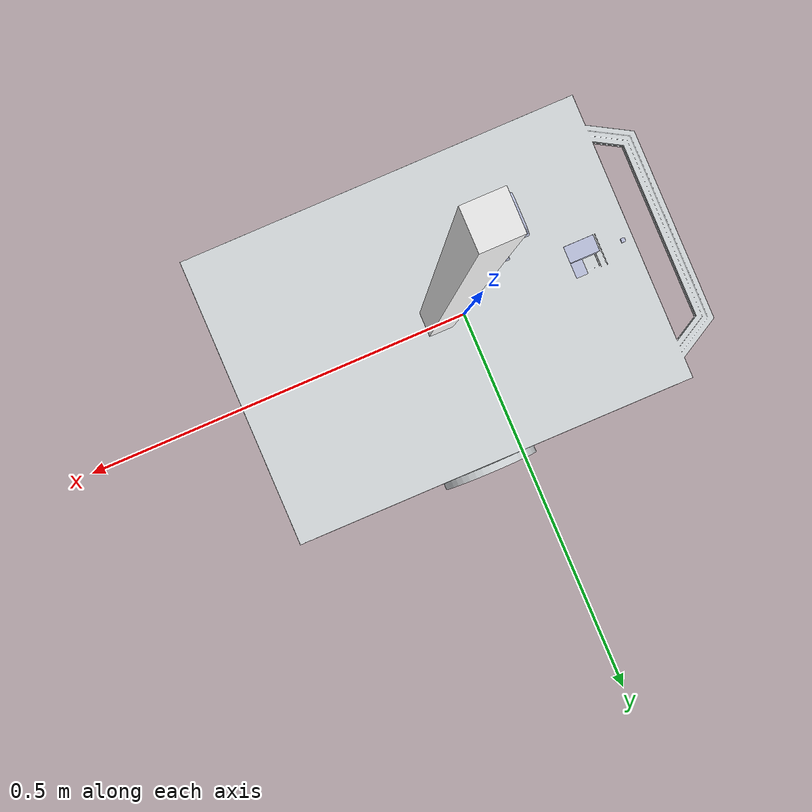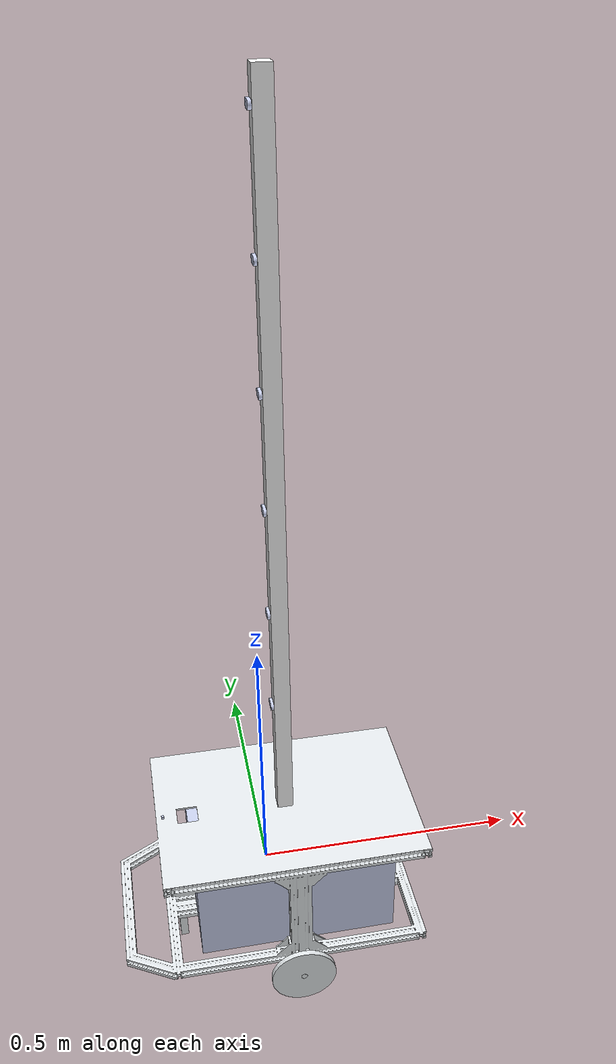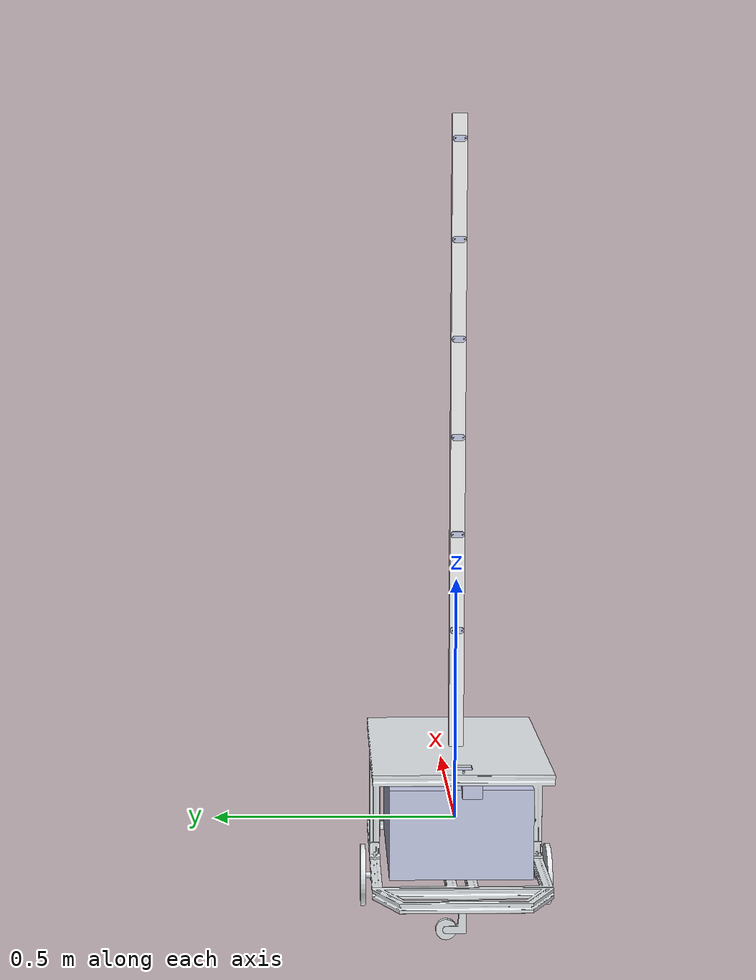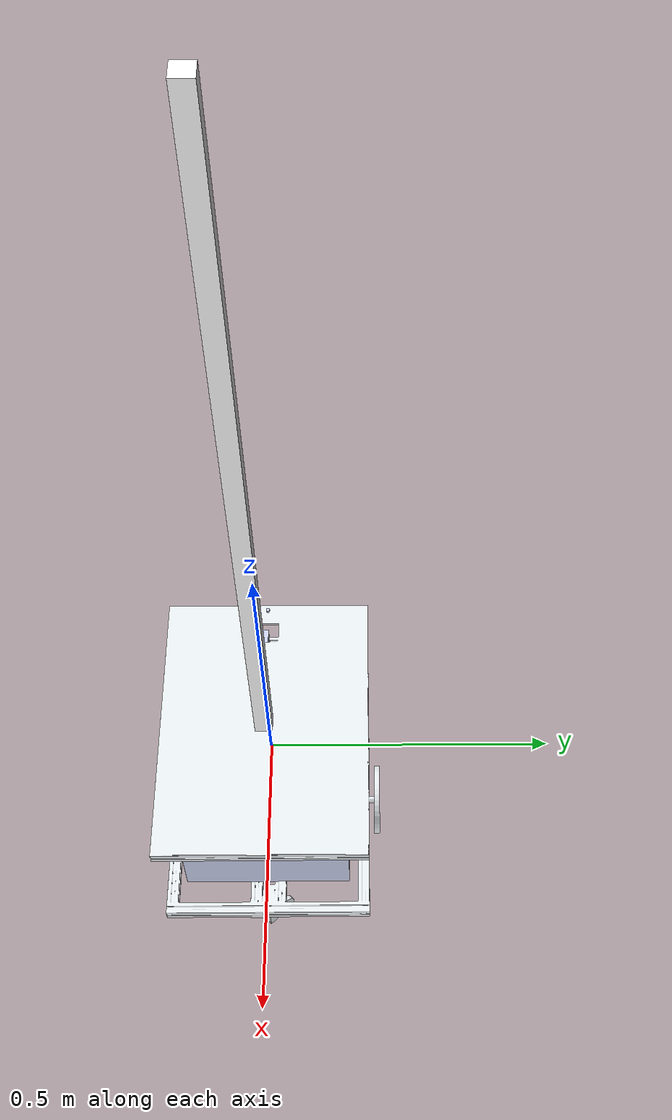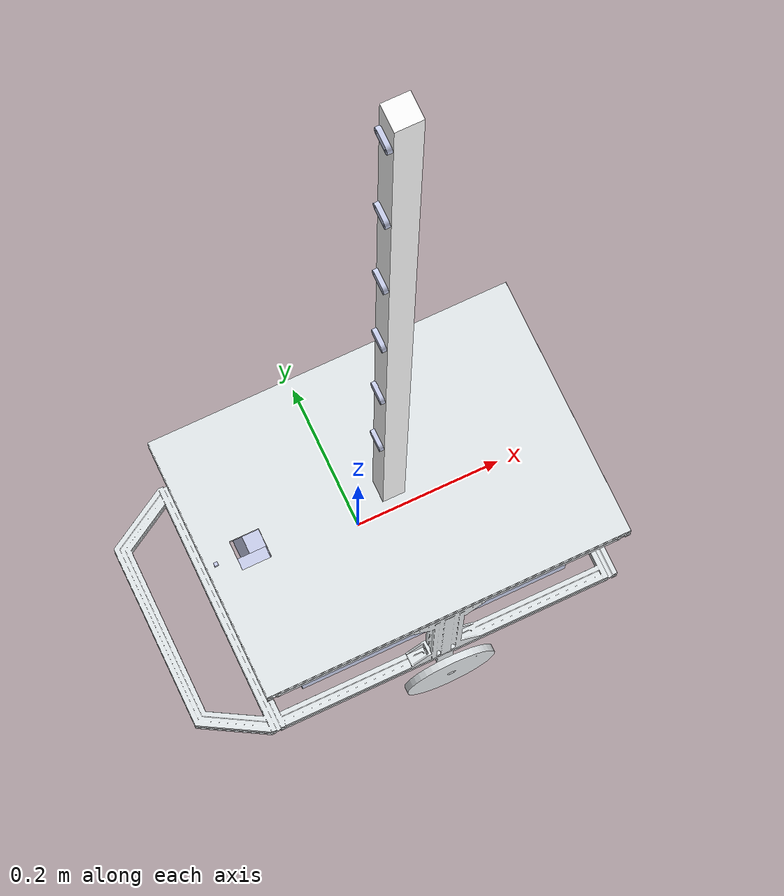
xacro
<?xml version="1.0" encoding="utf-8"?>
<robot  name="GazeboV0" xmlns:xacro="http://www.ros.org/wiki/xacro">
  <xacro:include filename="$(find GazeboV0)/urdf/GazeboV0_gazebo_plugins.xacro"/>
  <link
    name="Chassis">
    <inertial>
      <origin
        xyz="0.0269095443731569 0.0453323740979076 0.00338251947577584"
        rpy="0 0 0" />
      <mass
        value="4.71173330321545" />
      <inertia
        ixx="0.131230257498409"
        ixy="-0.00965992784236992"
        ixz="-5.99613989356189E-08"
        iyy="0.195410162986863"
        iyz="6.45264756717054E-06"
        izz="0.183471725736634" />
    </inertial>
    <visual>
      <origin
        xyz="0 0 0"
        rpy="0 0 0" />
      <geometry>
        <mesh
          filename="package://GazeboV0/meshes/Chassis.STL" />
      </geometry>
      <material
        name="">
        <color
          rgba="0.898039215686275 0.917647058823529 0.929411764705882 1" />
      </material>
    </visual>
    <collision>
      <origin
        xyz="0 0 0"
        rpy="0 0 0" />
      <geometry>
        <mesh
          filename="package://GazeboV0/meshes/Chassis.STL" />
      </geometry>
    </collision>
  </link>
  <link
    name="RightWheel">
    <inertial>
      <origin
        xyz="-4.16333634234434E-17 0 0.00510000000000468"
        rpy="0 0 0" />
      <mass
        value="0.338614058747035" />
      <inertia
        ixx="0.000347581051317554"
        ixy="-1.01643953670217E-20"
        ixz="-2.39239615850713E-18"
        iyy="0.000347581051317554"
        iyz="4.29776253994726E-19"
        izz="0.000689518301963574" />
    </inertial>
    <visual>
      <origin
        xyz="0 0 0"
        rpy="0 0 0" />
      <geometry>
        <mesh
          filename="package://GazeboV0/meshes/RightWheel.STL" />
      </geometry>
      <material
        name="">
        <color
          rgba="0.898039215686275 0.917647058823529 0.929411764705882 1" />
      </material>
    </visual>
    <collision>
      <origin
        xyz="0 0 0"
        rpy="0 0 0" />
      <geometry>
        <mesh
          filename="package://GazeboV0/meshes/RightWheel.STL" />
      </geometry>
    </collision>
  </link>
  <joint
    name="RightRevolute"
    type="continuous">
    <origin
      xyz="0.040115 0.18594 -0.13626"
      rpy="-1.5708 0.15664 0" />
    <parent
      link="Chassis" />
    <child
      link="RightWheel" />
    <axis
      xyz="0 0 1" />
    <dynamics
      damping="0.01"
      friction="0.01" />
  </joint>
  <link
    name="LeftWheel">
    <inertial>
      <origin
        xyz="9.75608482889356E-15 -3.19189119579733E-16 -0.384296129215001"
        rpy="0 0 0" />
      <mass
        value="0.338614058747035" />
      <inertia
        ixx="0.000347581051317554"
        ixy="3.65109595413485E-32"
        ixz="-8.76963966855234E-18"
        iyy="0.000347581051317554"
        iyz="3.26098816688528E-19"
        izz="0.000689518301963574" />
    </inertial>
    <visual>
      <origin
        xyz="0 0 0"
        rpy="0 0 0" />
      <geometry>
        <mesh
          filename="package://GazeboV0/meshes/LeftWheel.STL" />
      </geometry>
      <material
        name="">
        <color
          rgba="0.898039215686275 0.917647058823529 0.929411764705882 1" />
      </material>
    </visual>
    <collision>
      <origin
        xyz="0 0 0"
        rpy="0 0 0" />
      <geometry>
        <mesh
          filename="package://GazeboV0/meshes/LeftWheel.STL" />
      </geometry>
    </collision>
  </link>
  <joint
    name="LeftRevolute"
    type="continuous">
    <origin
      xyz="0.040115 0.18594 -0.13626"
      rpy="-1.5708 -0.8089 0" />
    <parent
      link="Chassis" />
    <child
      link="LeftWheel" />
    <axis
      xyz="0 0 1" />
    <dynamics
      damping="0.01"
      friction="0.01" />
  </joint>
  <link
    name="FrontCastor">
    <inertial>
      <origin
        xyz="0.0030314489318095 0.0345627416364458 -2.33146835171283E-15"
        rpy="0 0 0" />
      <mass
        value="0.0671525104446695" />
      <inertia
        ixx="4.49259698602968E-05"
        ixy="-6.70501812216222E-06"
        ixz="6.59626907674286E-20"
        iyy="9.61913985679315E-06"
        iyz="3.5488033511995E-19"
        izz="4.97992078191438E-05" />
    </inertial>
    <visual>
      <origin
        xyz="0 0 0"
        rpy="0 0 0" />
      <geometry>
        <mesh
          filename="package://GazeboV0/meshes/FrontCastor.STL" />
      </geometry>
      <material
        name="">
        <color
          rgba="0.898039215686275 0.917647058823529 0.929411764705882 1" />
      </material>
    </visual>
    <collision>
      <origin
        xyz="0 0 0"
        rpy="0 0 0" />
      <geometry>
        <mesh
          filename="package://GazeboV0/meshes/FrontCastor.STL" />
      </geometry>
    </collision>
  </link>
  <joint
    name="FrontCastorRevolute"
    type="continuous">
    <origin
      xyz="-0.17901 -0.0033514 -0.11126"
      rpy="-1.5708 0 1.5956" />
    <parent
      link="Chassis" />
    <child
      link="FrontCastor" />
    <axis
      xyz="0 1 0" />
    <dynamics
      damping="0.01"
      friction="0.01" />
  </joint>
  <link
    name="FrontCastorWheel">
    <inertial>
      <origin
        xyz="0 -1.38777878078145E-17 -2.692290834716E-15"
        rpy="0 0 0" />
      <mass
        value="0.0317645176567402" />
      <inertia
        ixx="3.91504603938205E-06"
        ixy="7.41153828847513E-22"
        ixz="2.11096492323533E-21"
        iyy="3.91504603938204E-06"
        iyz="-3.64621214013375E-21"
        izz="7.40108172021949E-06" />
    </inertial>
    <visual>
      <origin
        xyz="0 0 0"
        rpy="0 0 0" />
      <geometry>
        <mesh
          filename="package://GazeboV0/meshes/FrontCastorWheel.STL" />
      </geometry>
      <material
        name="">
        <color
          rgba="0.898039215686275 0.917647058823529 0.929411764705882 1" />
      </material>
    </visual>
    <collision>
      <origin
        xyz="0 0 0"
        rpy="0 0 0" />
      <geometry>
        <mesh
          filename="package://GazeboV0/meshes/FrontCastorWheel.STL" />
      </geometry>
    </collision>
  </link>
  <joint
    name="FrontCastorWheelRevolute"
    type="continuous">
    <origin
      xyz="0.032 0.0675 0"
      rpy="0 0 1.984" />
    <parent
      link="FrontCastor" />
    <child
      link="FrontCastorWheel" />
    <axis
      xyz="0 0 1" />
    <dynamics
      damping="0.01"
      friction="0.01" />
  </joint>
  <link
    name="RearCastor">
    <inertial>
      <origin
        xyz="0.00303144893180851 0.0345627416364456 -1.22124532708767E-14"
        rpy="0 0 0" />
      <mass
        value="0.0671525104446697" />
      <inertia
        ixx="4.49259698602973E-05"
        ixy="-6.70501812216102E-06"
        ixz="3.2695471764016E-19"
        iyy="9.61913985679271E-06"
        iyz="1.94821687675364E-18"
        izz="4.97992078191438E-05" />
    </inertial>
    <visual>
      <origin
        xyz="0 0 0"
        rpy="0 0 0" />
      <geometry>
        <mesh
          filename="package://GazeboV0/meshes/RearCastor.STL" />
      </geometry>
      <material
        name="">
        <color
          rgba="0.898039215686275 0.917647058823529 0.929411764705882 1" />
      </material>
    </visual>
    <collision>
      <origin
        xyz="0 0 0"
        rpy="0 0 0" />
      <geometry>
        <mesh
          filename="package://GazeboV0/meshes/RearCastor.STL" />
      </geometry>
    </collision>
  </link>
  <joint
    name="RearCastorRevolute"
    type="continuous">
    <origin
      xyz="0.25924 -0.0033514 -0.11126"
      rpy="-1.5708 0 2.3562" />
    <parent
      link="Chassis" />
    <child
      link="RearCastor" />
    <axis
      xyz="0 1 0" />
    <dynamics
      damping="0.01"
      friction="0.01" />
  </joint>
  <link
    name="RearCastorWheel">
    <inertial>
      <origin
        xyz="0 2.77555756156289E-17 -1.01862962509358E-14"
        rpy="0 0 0" />
      <mass
        value="0.0317645176567403" />
      <inertia
        ixx="3.91504603938205E-06"
        ixy="-5.82335151237331E-22"
        ixz="-1.79994501291539E-21"
        iyy="3.91504603938205E-06"
        iyz="1.05879118406788E-22"
        izz="7.4010817202195E-06" />
    </inertial>
    <visual>
      <origin
        xyz="0 0 0"
        rpy="0 0 0" />
      <geometry>
        <mesh
          filename="package://GazeboV0/meshes/RearCastorWheel.STL" />
      </geometry>
      <material
        name="">
        <color
          rgba="0.898039215686275 0.917647058823529 0.929411764705882 1" />
      </material>
    </visual>
    <collision>
      <origin
        xyz="0 0 0"
        rpy="0 0 0" />
      <geometry>
        <mesh
          filename="package://GazeboV0/meshes/RearCastorWheel.STL" />
      </geometry>
    </collision>
  </link>
  <joint
    name="RearCastorWheelRevolute"
    type="continuous">
    <origin
      xyz="0.032 0.0675 0"
      rpy="0 0 0.34434" />
    <parent
      link="RearCastor" />
    <child
      link="RearCastorWheel" />
    <axis
      xyz="0 0 1" />
    <dynamics
      damping="0.01"
      friction="0.01" />
  </joint>
  <link
    name="Battery">
    <inertial>
      <origin
        xyz="-2.77555756156289E-17 0.0925 2.82152773367628E-15"
        rpy="0 0 0" />
      <mass
        value="17.512433" />
      <inertia
        ixx="0.172679886227083"
        ixy="-7.17521943866141E-17"
        ixz="-9.46607853575198E-16"
        iyy="0.333465911708333"
        iyz="2.24903143829696E-15"
        izz="0.260679862052083" />
    </inertial>
    <visual>
      <origin
        xyz="0 0 0"
        rpy="0 0 0" />
      <geometry>
        <mesh
          filename="package://GazeboV0/meshes/Battery.STL" />
      </geometry>
      <material
        name="">
        <color
          rgba="0.792156862745098 0.819607843137255 0.933333333333333 1" />
      </material>
    </visual>
    <collision>
      <origin
        xyz="0 0 0"
        rpy="0 0 0" />
      <geometry>
        <mesh
          filename="package://GazeboV0/meshes/Battery.STL" />
      </geometry>
    </collision>
  </link>
  <joint
    name="Fixed_Chassis_Battery"
    type="fixed">
    <origin
      xyz="0.040115 -0.0036514 0.097745"
      rpy="-1.5708 0 3.1416" />
    <parent
      link="Chassis" />
    <child
      link="Battery" />
    <axis
      xyz="0 0 0" />
  </joint>
  <link
    name="LiDAR">
    <inertial>
      <origin
        xyz="-2.77555756156289E-17 0.02 5.63785129692462E-18"
        rpy="0 0 0" />
      <mass
        value="0.064" />
      <inertia
        ixx="1.70666666666667E-05"
        ixy="2.58629900392802E-22"
        ixz="8.21376807141E-22"
        iyy="1.70666666666667E-05"
        iyz="1.20423640868724E-22"
        izz="1.70666666666667E-05" />
    </inertial>
    <visual>
      <origin
        xyz="0 0 0"
        rpy="0 0 0" />
      <geometry>
        <mesh
          filename="package://GazeboV0/meshes/LiDAR.STL" />
      </geometry>
      <material
        name="">
        <color
          rgba="0.792156862745098 0.819607843137255 0.933333333333333 1" />
      </material>
    </visual>
    <collision>
      <origin
        xyz="0 0 0"
        rpy="0 0 0" />
      <geometry>
        <mesh
          filename="package://GazeboV0/meshes/LiDAR.STL" />
      </geometry>
    </collision>
  </link>
  <joint
    name="Fixed_Battery_LiDAR"
    type="fixed">
    <origin
      xyz="-0.14989 -0.0033514 0.10474"
      rpy="0 0 3.1416" />
    <parent
      link="Chassis" />
    <child
      link="LiDAR" />
    <axis
      xyz="0 0 0" />
  </joint>
  <link
    name="WoodRod">
    <inertial>
      <origin
        xyz="-2.26988566831565E-15 -5.15756125557543E-06 0.650041260490045"
        rpy="0 0 0" />
      <mass
        value="0.701710470821045" />
      <inertia
        ixx="0.098880929063303"
        ixy="-5.19150998271822E-22"
        ixz="3.44989160057102E-16"
        iyy="0.0988809460746776"
        iyz="-3.62060800140933E-07"
        izz="0.000105225289802979" />
    </inertial>
    <visual>
      <origin
        xyz="0 0 0"
        rpy="0 0 0" />
      <geometry>
        <mesh
          filename="package://GazeboV0/meshes/WoodRod.STL" />
      </geometry>
      <material
        name="">
        <color
          rgba="1 1 1 1" />
      </material>
    </visual>
    <collision>
      <origin
        xyz="0 0 0"
        rpy="0 0 0" />
      <geometry>
        <mesh
          filename="package://GazeboV0/meshes/WoodRod.STL" />
      </geometry>
    </collision>
  </link>
  <joint
    name="Fixed_Chassis_WoodRod"
    type="fixed">
    <origin
      xyz="0.040115 -0.0033514 1.4407"
      rpy="3.1416 0 -1.5708" />
    <parent
      link="Chassis" />
    <child
      link="WoodRod" />
    <axis
      xyz="0 0 0" />
  </joint>
  <link
    name="TBS1">
    <inertial>
      <origin
        xyz="-2.08166817117217E-17 0 -0.00275"
        rpy="0 0 0" />
      <mass
        value="0.00173867551882195" />
      <inertia
        ixx="2.81242393072002E-08"
        ixy="-1.07733169308297E-25"
        ixz="6.43232433632577E-22"
        iyy="9.57958648484737E-08"
        iyz="4.9157531355283E-25"
        izz="1.1515428174828E-07" />
    </inertial>
    <visual>
      <origin
        xyz="0 0 0"
        rpy="0 0 0" />
      <geometry>
        <mesh
          filename="package://GazeboV0/meshes/TBS1.STL" />
      </geometry>
      <material
        name="">
        <color
          rgba="0.792156862745098 0.819607843137255 0.933333333333333 1" />
      </material>
    </visual>
    <collision>
      <origin
        xyz="0 0 0"
        rpy="0 0 0" />
      <geometry>
        <mesh
          filename="package://GazeboV0/meshes/TBS1.STL" />
      </geometry>
    </collision>
  </link>
  <joint
    name="Fixed_WoodRod_TBS1"
    type="fixed">
    <origin
      xyz="0 0.0205 1.05"
      rpy="-1.5708 0 0" />
    <parent
      link="WoodRod" />
    <child
      link="TBS1" />
    <axis
      xyz="0 0 0" />
  </joint>
  <link
    name="TBS2">
    <inertial>
      <origin
        xyz="-2.99239799605999E-17 0 -0.00275"
        rpy="0 0 0" />
      <mass
        value="0.00173867551882196" />
      <inertia
        ixx="2.81242393072003E-08"
        ixy="-7.56516223604374E-23"
        ixz="6.43735947518725E-22"
        iyy="9.57958648484739E-08"
        iyz="-2.36343625492949E-25"
        izz="1.1515428174828E-07" />
    </inertial>
    <visual>
      <origin
        xyz="0 0 0"
        rpy="0 0 0" />
      <geometry>
        <mesh
          filename="package://GazeboV0/meshes/TBS2.STL" />
      </geometry>
      <material
        name="">
        <color
          rgba="0.792156862745098 0.819607843137255 0.933333333333333 1" />
      </material>
    </visual>
    <collision>
      <origin
        xyz="0 0 0"
        rpy="0 0 0" />
      <geometry>
        <mesh
          filename="package://GazeboV0/meshes/TBS2.STL" />
      </geometry>
    </collision>
  </link>
  <joint
    name="Fixed_WoodRod_TBS2"
    type="fixed">
    <origin
      xyz="0 0.0205 0.85"
      rpy="-1.5707963267949 0 0" />
    <parent
      link="WoodRod" />
    <child
      link="TBS2" />
    <axis
      xyz="0 0 0" />
  </joint>
  <link
    name="TBS3">
    <inertial>
      <origin
        xyz="-2.12503625807159E-17 0 -0.00275"
        rpy="0 0 0" />
      <mass
        value="0.00173867551882195" />
      <inertia
        ixx="2.81242393072002E-08"
        ixy="-1.50916302612396E-22"
        ixz="6.44887958080419E-22"
        iyy="9.57958648484737E-08"
        iyz="-2.36343625492254E-25"
        izz="1.1515428174828E-07" />
    </inertial>
    <visual>
      <origin
        xyz="0 0 0"
        rpy="0 0 0" />
      <geometry>
        <mesh
          filename="package://GazeboV0/meshes/TBS3.STL" />
      </geometry>
      <material
        name="">
        <color
          rgba="0.792156862745098 0.819607843137255 0.933333333333333 1" />
      </material>
    </visual>
    <collision>
      <origin
        xyz="0 0 0"
        rpy="0 0 0" />
      <geometry>
        <mesh
          filename="package://GazeboV0/meshes/TBS3.STL" />
      </geometry>
    </collision>
  </link>
  <joint
    name="Fixed_WoodRod_TBS3"
    type="fixed">
    <origin
      xyz="0 0.0205 0.65"
      rpy="-1.5707963267949 0 0" />
    <parent
      link="WoodRod" />
    <child
      link="TBS3" />
    <axis
      xyz="0 0 0" />
  </joint>
  <link
    name="TBS4">
    <inertial>
      <origin
        xyz="2.73218947466347E-17 4.09782208166121E-11 -0.00275000000000001"
        rpy="0 0 0" />
      <mass
        value="0.00173867551882195" />
      <inertia
        ixx="2.81242393072002E-08"
        ixy="-1.57689833672588E-22"
        ixz="-6.4427241597485E-22"
        iyy="9.57958648484737E-08"
        iyz="-2.88462890935071E-16"
        izz="1.1515428174828E-07" />
    </inertial>
    <visual>
      <origin
        xyz="0 0 0"
        rpy="0 0 0" />
      <geometry>
        <mesh
          filename="package://GazeboV0/meshes/TBS4.STL" />
      </geometry>
      <material
        name="">
        <color
          rgba="0.792156862745098 0.819607843137255 0.933333333333333 1" />
      </material>
    </visual>
    <collision>
      <origin
        xyz="0 0 0"
        rpy="0 0 0" />
      <geometry>
        <mesh
          filename="package://GazeboV0/meshes/TBS4.STL" />
      </geometry>
    </collision>
  </link>
  <joint
    name="Fixed_WoodRod_TBS4"
    type="fixed">
    <origin
      xyz="0 0.015 0.45"
      rpy="1.57079631189374 0 0" />
    <parent
      link="WoodRod" />
    <child
      link="TBS4" />
    <axis
      xyz="0 0 0" />
  </joint>
  <link
    name="TBS5">
    <inertial>
      <origin
        xyz="3.03576608295941E-18 4.09781097943096E-11 -0.00275"
        rpy="0 0 0" />
      <mass
        value="0.00173867551882196" />
      <inertia
        ixx="2.81242393072001E-08"
        ixy="-1.73790056307107E-22"
        ixz="-6.47487423003288E-22"
        iyy="9.57958648484739E-08"
        iyz="-2.88462890345463E-16"
        izz="1.1515428174828E-07" />
    </inertial>
    <visual>
      <origin
        xyz="0 0 0"
        rpy="0 0 0" />
      <geometry>
        <mesh
          filename="package://GazeboV0/meshes/TBS5.STL" />
      </geometry>
      <material
        name="">
        <color
          rgba="0.792156862745098 0.819607843137255 0.933333333333333 1" />
      </material>
    </visual>
    <collision>
      <origin
        xyz="0 0 0"
        rpy="0 0 0" />
      <geometry>
        <mesh
          filename="package://GazeboV0/meshes/TBS5.STL" />
      </geometry>
    </collision>
  </link>
  <joint
    name="Fixed_WoodRod_TBS5"
    type="fixed">
    <origin
      xyz="0 0.015 0.25"
      rpy="1.57079631189374 0 0" />
    <parent
      link="WoodRod" />
    <child
      link="TBS5" />
    <axis
      xyz="0 0 0" />
  </joint>
  <link
    name="TBS6">
    <inertial>
      <origin
        xyz="-3.86902350435481E-11 3.69675751390464E-05 0.00274975151575344"
        rpy="0 0 0" />
      <mass
        value="0.00173867551882195" />
      <inertia
        ixx="2.81242393072E-08"
        ixy="-3.66121094548663E-18"
        ixz="-1.22450245460564E-15"
        iyy="9.5799363062521E-08"
        iyz="2.60206933872073E-10"
        izz="1.15150783534232E-07" />
    </inertial>
    <visual>
      <origin
        xyz="0 0 0"
        rpy="0 0 0" />
      <geometry>
        <mesh
          filename="package://GazeboV0/meshes/TBS6.STL" />
      </geometry>
      <material
        name="">
        <color
          rgba="0.792156862745098 0.819607843137255 0.933333333333333 1" />
      </material>
    </visual>
    <collision>
      <origin
        xyz="0 0 0"
        rpy="0 0 0" />
      <geometry>
        <mesh
          filename="package://GazeboV0/meshes/TBS6.STL" />
      </geometry>
    </collision>
  </link>
  <joint
    name="Fixed_WoodRod_TBS6"
    type="fixed">
    <origin
      xyz="0 0.015 0.0500000000000003"
      rpy="-1.55735316729788 0 0" />
    <parent
      link="WoodRod" />
    <child
      link="TBS6" />
    <axis
      xyz="0 0 0" />
  </joint>
  <link
    name="Camera">
    <inertial>
      <origin
        xyz="0 0.0025 0"
        rpy="0 0 0" />
      <mass
        value="0.000125" />
      <inertia
        ixx="5.20833333333335E-10"
        ixy="3.24240024973725E-25"
        ixz="2.35533258742828E-26"
        iyy="5.20833333333335E-10"
        iyz="-4.66256020423435E-25"
        izz="5.20833333333335E-10" />
    </inertial>
    <visual>
      <origin
        xyz="0 0 0"
        rpy="0 0 0" />
      <geometry>
        <mesh
          filename="package://GazeboV0/meshes/Camera.STL" />
      </geometry>
      <material
        name="">
        <color
          rgba="0.792156862745098 0.819607843137255 0.933333333333333 1" />
      </material>
    </visual>
    <collision>
      <origin
        xyz="0 0 0"
        rpy="0 0 0" />
      <geometry>
        <mesh
          filename="package://GazeboV0/meshes/Camera.STL" />
      </geometry>
    </collision>
  </link>
  <joint
    name="Fixed_Chassis_Camera"
    type="fixed">
    <origin
      xyz="-0.19689 -0.00085136 0.14724"
      rpy="-3.1416 0 0" />
    <parent
      link="Chassis" />
    <child
      link="Camera" />
    <axis
      xyz="0 0 0" />
  </joint>
</robot>
